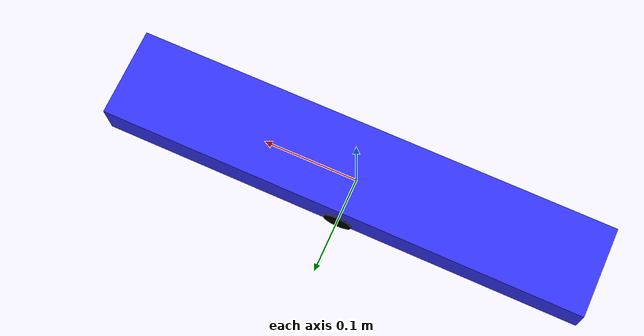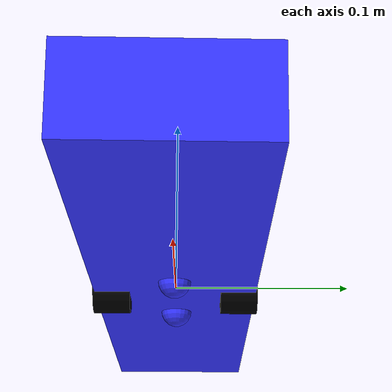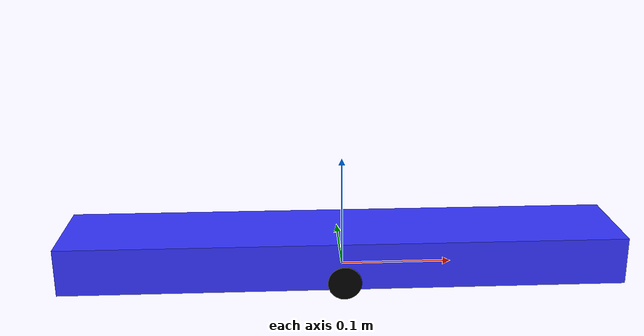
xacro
<?xml version="1.0" encoding="utf-8"?>

<robot name="squarbo" xmlns:xacro="http://ros.org/wiki/xacro" >

  <xacro:property name="x" value="0.5"/>

  <material name="rr_m_green">
    <color rgba="0 1 0 1"/>
  </material>
  <material name="rr_m_green_tp">
    <color rgba="0 1 0 .5"/>
  </material>
  <material name="rr_m_black">
    <color rgba="0 0 0 1"/>
  </material>
  <material name="rr_m_gray_tp">
    <color rgba="0.5 0.5 0.5 .9"/>
  </material>
  <material name="rr_m_gray">
    <color rgba="0.7 0.7 0.7 1"/>
  </material>

  <material name="darker_blue">
    <color rgba="0.5 0.5 1 1"/>
  </material>
  <material name="black">
    <color rgba="0 0 0 1"/>
  </material>
  <material name="blue">
    <color rgba="0.2 0.2 1 1"/>
  </material>

  <link name="base_link">
    <visual>
      <geometry>
        <box size="${x} 0.092 0.042"/>
      </geometry>
      <origin xyz="0 0 0.015"/>
      <material name="blue"/>
    </visual>
    <collision>
      <geometry>
        <box size="0.092 0.092 0.042"/>
      </geometry>
      <origin xyz="0 0 0.015"/>
    </collision>
    <inertial>
      <!-- place the centre of mass in the actual centre of the link (not its origin) -->
      <origin xyz="0 0 0.015"/>
      <mass value="0.3"/>
      <inertia ixx="0.0002557" ixy="0.0" ixz="0.0" iyy="0.0002557" iyz="0.0" izz="0.0004232"/>
    </inertial>
  </link>
  <gazebo reference="base_link">
    <material>Gazebo/Blue</material>
    <selfCollide>false</selfCollide>
  </gazebo>

  <link name="left_wheel">
    <visual>
      <geometry>
        <cylinder length="0.021" radius="0.015"/>
      </geometry>
      <material name="black"/>
    </visual>
    <collision>
      <geometry>
        <cylinder length="0.021" radius="0.015"/>
      </geometry>
    </collision>
    <inertial>
      <mass value="0.2"/>
      <inertia ixx="7.51875e-06" ixy="0.0" ixz="0.0" iyy="7.51875e-06" iyz="0.0" izz="2.25e-05"/>
    </inertial>
  </link>
  <gazebo reference="left_wheel">
    <material>Gazebo/CoM</material>
    <mu1 value="1.0e+6"/>
    <mu2 value="1.0e+6"/>
    <kp value="1.0e+9"/>
    <kd value="5.0e+6"/>
    <selfCollide>false</selfCollide>
  </gazebo>
  <link name="right_wheel">
    <visual>
      <geometry>
        <cylinder length="0.021" radius="0.015"/>
      </geometry>
      <material name="black"/>
    </visual>
    <collision>
      <geometry>
        <cylinder length="0.021" radius="0.015"/>
      </geometry>
    </collision>
    <inertial>
      <mass value="0.2"/>
      <inertia ixx="7.51875e-06" ixy="0.0" ixz="0.0" iyy="7.51875e-06" iyz="0.0" izz="2.25e-05"/>
    </inertial>
  </link>
  <gazebo reference="right_wheel">
    <material>Gazebo/CoM</material>
    <mu1 value="1.0e+6"/>
    <mu2 value="1.0e+6"/>
    <kp value="1.0e+9"/>
    <kd value="5.0e+6"/>
    <selfCollide>false</selfCollide>
  </gazebo>
  <link name="castor_frontal_wheel">
    <visual>
      <geometry>
        <sphere radius="0.009"/>
      </geometry>
      <material name="blue"/>
    </visual>
    <collision>
      <geometry>
        <sphere radius="0.009"/>
      </geometry>
      <surface>
        <friction>
        <ode>
            <mu>0</mu>
            <mu2>0</mu2>
            <slip1>1.0</slip1>
            <slip2>1.0</slip2>
        </ode>
        </friction>
    </surface>
    </collision>
    <inertial>
      <mass value="0.2"/>
      <inertia ixx="6.48e-06" ixy="0.0" ixz="0.0" iyy="6.48e-06" iyz="0.0" izz="6.48e-06"/>
    </inertial>
  </link>
  <gazebo reference="castor_frontal_wheel">
    <mu1 value="0.0"/>
    <mu2 value="0.0"/>
    <kp value="1.0e+9"/>
    <kd value="5.0e+6"/>
    <material>Gazebo/Black</material>
  </gazebo>
  <joint name="base_to_castor_frontal_wheel" type="fixed">
    <parent link="base_link"/>
    <child link="castor_frontal_wheel"/>
    <origin xyz="0.037 0 -0.006"/>
  </joint>
  <link name="castor_rear_wheel">
    <visual>
      <geometry>
        <sphere radius="0.009"/>
      </geometry>
      <material name="blue"/>
    </visual>
    <collision>
      <geometry>
        <sphere radius="0.009"/>
      </geometry>
      <surface>
        <friction>
        <ode>
            <mu>0</mu>
            <mu2>0</mu2>
            <slip1>1.0</slip1>
            <slip2>1.0</slip2>
        </ode>
        </friction>
    </surface>
    </collision>
    <inertial>
      <mass value="0.2"/>
      <inertia ixx="6.48e-06" ixy="0.0" ixz="0.0" iyy="6.48e-06" iyz="0.0" izz="6.48e-06"/>
    </inertial>
  </link>
  <gazebo reference="castor_rear_wheel">
    <mu1 value="0.0"/>
    <mu2 value="0.0"/>
    <kp value="1.0e+9"/>
    <kd value="5.0e+6"/>
    <material>Gazebo/Black</material>
  </gazebo>
  <joint name="base_to_castor_rear_wheel" type="fixed">
    <parent link="base_link"/>
    <child link="castor_rear_wheel"/>
    <origin xyz="-0.037 0 -0.006"/>
  </joint>

  <!-- ################# FINISH CASTORS DEFINITION ############################ -->
  <joint name="left_wheel_joint" type="continuous">
    <parent link="base_link"/>
    <child link="left_wheel"/>
    <origin rpy="0 1.57079632679 1.57079632679" xyz="0 0.0365 0"/>
    <axis rpy="0 0 0" xyz="0 0 1"/>
    <joint_properties damping="1.0" friction="1.0"/>
  </joint>
  <joint name="right_wheel_joint" type="continuous">
    <parent link="base_link"/>
    <child link="right_wheel"/>
    <origin rpy="0 1.57079632679 1.57079632679" xyz="0 -0.0365 0"/>
    <axis rpy="0 0 0" xyz="0 0 1"/>
    <joint_properties damping="1.0" friction="1.0"/>
  </joint>

  <gazebo>
    <plugin name="joint_states" filename="libgazebo_ros_joint_state_publisher.so">
      <ros>
          <argument>--ros-args</argument>
          <argument>-r </argument>
          <argument>~/out:=joint_states</argument>
      </ros>
      <update_rate>50</update_rate>
      <joint_name>right_wheel_joint</joint_name>
      <joint_name>left_wheel_joint</joint_name>
    </plugin>

    <plugin name="hoverboard_diff_drive" filename="libgazebo_ros_diff_drive.so">

        <ros>
        </ros>

      <update_rate>50</update_rate>
      <left_joint>left_wheel_joint</left_joint>
      <right_joint>right_wheel_joint</right_joint>
      <wheel_separation>0.073</wheel_separation>
      <wheel_diameter>0.03</wheel_diameter>
      <command_topic>cmd_vel</command_topic>

      <!-- output -->
      <publish_odom>true</publish_odom>
      <publish_odom_tf>true</publish_odom_tf>
      <publish_wheel_tf>true</publish_wheel_tf>

      <odometry_topic>odom</odometry_topic>
      <odometry_frame>odom</odometry_frame>
      <robot_base_frame>base_link</robot_base_frame>

      <max_wheel_torque>30</max_wheel_torque>
      <max_wheel_acceleration>1.0</max_wheel_acceleration>
    </plugin>
  </gazebo>
</robot>
